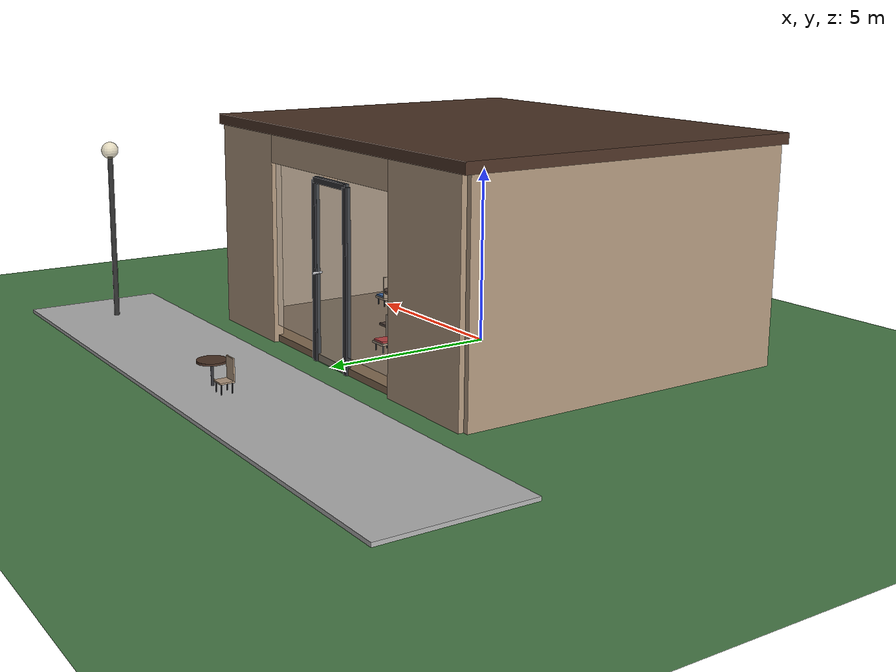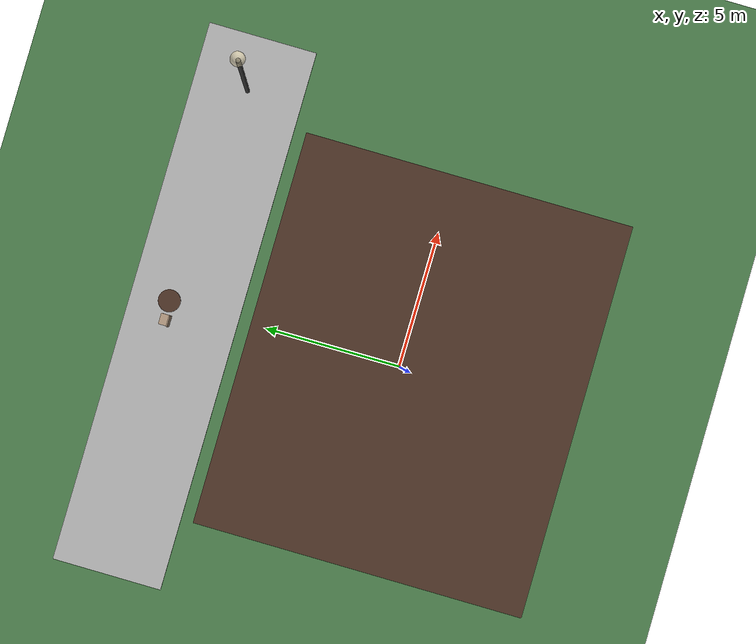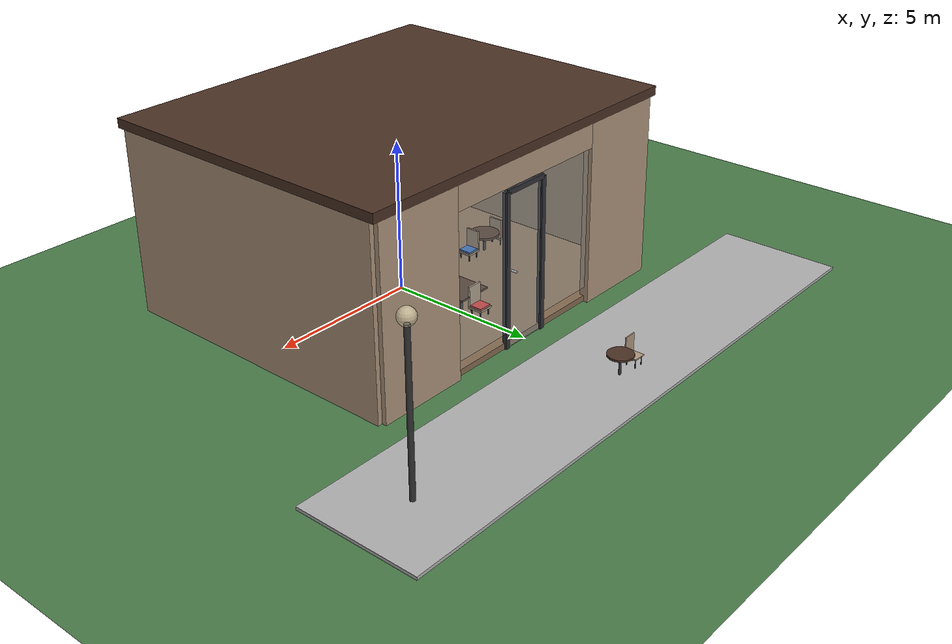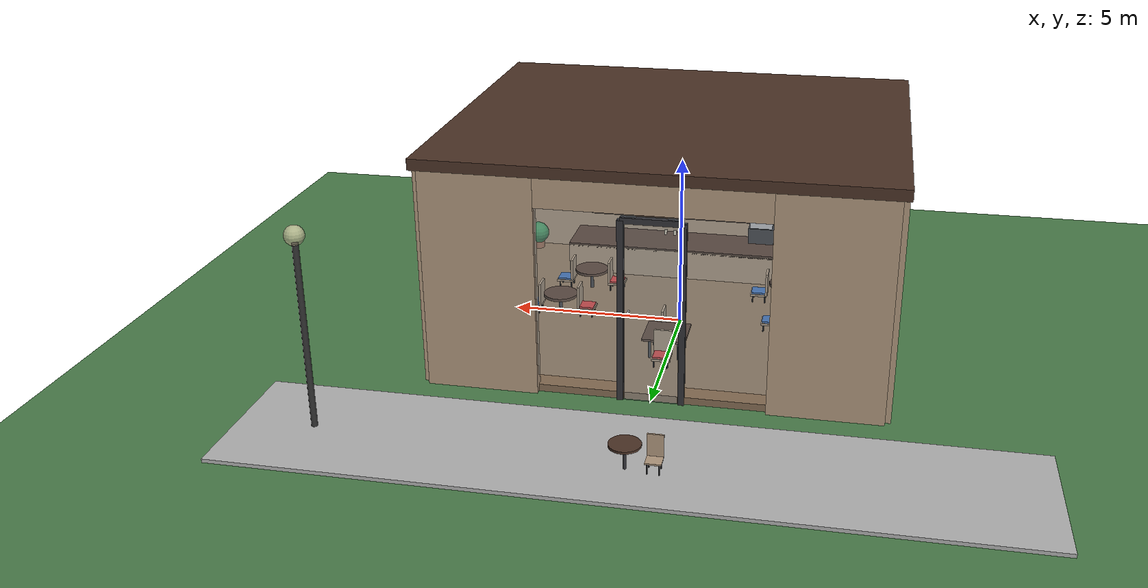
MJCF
<mujoco model="dynamic_glass_cafe">
  <!-- 编译器设置 -->
  <compiler angle="degree" coordinate="local" inertiafromgeom="true"/>

  <!-- 物理选项 -->
  <option timestep="0.005" gravity="0 0 -9.81" iterations="50" solver="Newton" tolerance="1e-10">
    <flag contact="enable" gravity="enable"/>
  </option>

  <!-- 默认设置 -->
  <default>
    <geom conaffinity="1" condim="3" friction="1 0.5 0.005" solimp="0.9 0.95 0.001" solref="0.02 1"/>
    <joint damping="0.5" armature="0.01"/>
    <motor ctrlrange="-1 1" ctrllimited="true"/>
  </default>

  <!-- 视觉设置 -->
  <visual>
    <map force="0.1" zfar="100"/>
    <rgba haze="0.05 0.08 0.12 1"/>
    <quality shadowsize="4096"/>
    <global offwidth="1280" offheight="720"/>
  </visual>

  <!-- 资源定义 -->
  <asset>
    <!-- 木地板 -->
    <texture name="wood_floor" type="2d" builtin="checker" rgb1="0.55 0.45 0.35" rgb2="0.5 0.4 0.3" width="512" height="512"/>
    <material name="wood_floor_mat" texture="wood_floor" texrepeat="10 10" specular="0.3" shininess="0.3" reflectance="0.1"/>

    <!-- 高透明玻璃 -->
    <material name="glass_clear" rgba="0.8 0.9 0.95 0.15" specular="1" shininess="1" reflectance="0.7"/>

    <!-- 半透明玻璃门 -->
    <material name="glass_door" rgba="0.75 0.85 0.9 0.25" specular="1" shininess="1" reflectance="0.6"/>

    <!-- 金属材质 -->
    <material name="metal_dark" rgba="0.2 0.2 0.22 1" specular="0.9" shininess="0.8" reflectance="0.4"/>
    <material name="metal_chrome" rgba="0.8 0.8 0.82 1" specular="1" shininess="0.9" reflectance="0.6"/>

    <!-- 木材 -->
    <material name="wood_dark" rgba="0.3 0.2 0.15 1" specular="0.2" shininess="0.2" reflectance="0"/>
    <material name="wood_light" rgba="0.7 0.6 0.5 1" specular="0.3" shininess="0.3" reflectance="0.05"/>

    <!-- 布料 -->
    <material name="fabric_red" rgba="0.8 0.2 0.2 1" specular="0.1" shininess="0.1"/>
    <material name="fabric_blue" rgba="0.2 0.4 0.7 1" specular="0.1" shininess="0.1"/>
    <material name="fabric_beige" rgba="0.9 0.85 0.75 1" specular="0.1" shininess="0.1"/>

    <!-- 草地 -->
    <texture name="grass" type="2d" builtin="checker" rgb1="0.3 0.5 0.3" rgb2="0.28 0.48 0.28" width="512" height="512"/>
    <material name="grass_mat" texture="grass" texrepeat="40 40" specular="0.1" shininess="0.05" reflectance="0"/>

    <!-- 天空 -->
    <texture name="skybox" type="skybox" builtin="gradient" rgb1="0.6 0.75 0.9" rgb2="0.3 0.5 0.7" width="512" height="512"/>
  </asset>

  <!-- 世界主体 -->
  <worldbody>
    <!-- 主光源（阳光 - 增强） -->
    <light directional="true" diffuse="1.2 1.2 1.1" specular="0.6 0.6 0.5" pos="30 20 40" dir="-1 -0.7 -1.5" castshadow="true"/>

    <!-- 辅助光源 - 增强 -->
    <light directional="true" diffuse="0.5 0.55 0.6" specular="0.3 0.3 0.3" pos="-20 -15 30" dir="0.7 0.5 -1" castshadow="false"/>

    <!-- 室内顶部光源 -->
    <light directional="false" diffuse="1.0 0.95 0.85" specular="0.4 0.4 0.3" pos="0 0 5.5" dir="0 0 -1" castshadow="false" cutoff="80"/>

    <!-- 地面 -->
    <geom name="ground" type="plane" size="50 50 0.1" material="grass_mat" condim="3" friction="1 0.5 0.005"/>

    <!-- ========== 咖啡店主体建筑 ========== -->
    <body name="cafe_building" pos="0 0 0">

      <!-- 地板 -->
      <geom name="cafe_floor" type="box" size="6 5 0.1" pos="0 0 0.1" material="wood_floor_mat"/>

      <!-- 后墙（实墙） -->
      <geom name="back_wall" type="box" size="6 0.15 3" pos="0 -5 3" material="wood_light"/>

      <!-- 左侧墙（实墙） -->
      <geom name="left_wall" type="box" size="0.15 5 3" pos="-6 0 3" material="wood_light"/>

      <!-- 右侧墙（实墙） -->
      <geom name="right_wall" type="box" size="0.15 5 3" pos="6 0 3" material="wood_light"/>

      <!-- 前墙左侧（实墙部分） -->
      <geom name="front_wall_left" type="box" size="1.5 0.15 3" pos="-4.5 5 3" material="wood_light"/>

      <!-- 前墙右侧（实墙部分） -->
      <geom name="front_wall_right" type="box" size="1.5 0.15 3" pos="4.5 5 3" material="wood_light"/>

      <!-- 前墙顶部横梁 -->
      <geom name="front_beam_top" type="box" size="3 0.15 0.4" pos="0 5 5.6" material="wood_light"/>

      <!-- 大型透明玻璃窗 - 前面 -->
      <geom name="front_glass_left" type="box" size="1.3 0.02 2.5" pos="-1.7 5 3" material="glass_clear"/>
      <geom name="front_glass_right" type="box" size="1.3 0.02 2.5" pos="1.7 5 3" material="glass_clear"/>

      <!-- 透明玻璃窗 - 左侧 -->
      <geom name="left_glass_1" type="box" size="0.02 2 2" pos="-6 -2 3" material="glass_clear"/>
      <geom name="left_glass_2" type="box" size="0.02 1.5 2" pos="-6 2 3" material="glass_clear"/>

      <!-- 透明玻璃窗 - 右侧 -->
      <geom name="right_glass_1" type="box" size="0.02 2 2" pos="6 -2 3" material="glass_clear"/>
      <geom name="right_glass_2" type="box" size="0.02 1.5 2" pos="6 2 3" material="glass_clear"/>

      <!-- 屋顶 -->
      <geom name="roof" type="box" size="6.2 5.2 0.15" pos="0 0 6.15" material="wood_dark"/>

      <!-- 门框 -->
      <geom name="door_frame_left" type="box" size="0.08 0.08 2.5" pos="-0.8 5 2.5" material="metal_dark"/>
      <geom name="door_frame_right" type="box" size="0.08 0.08 2.5" pos="0.8 5 2.5" material="metal_dark"/>
      <geom name="door_frame_top" type="box" size="0.8 0.08 0.08" pos="0 5 5" material="metal_dark"/>

    </body>

    <!-- ========== 动态玻璃门（可开合） ========== -->
    <body name="glass_door" pos="0 5 2.5">
      <joint name="door_hinge" type="hinge" pos="-0.7 0 0" axis="0 0 1" range="-5 90" damping="3" stiffness="5"/>
      <geom name="door_glass" type="box" size="0.7 0.03 2.5" pos="0 0 0" material="glass_door"/>
      <geom name="door_handle" type="cylinder" size="0.03 0.15" pos="0.6 0.08 0" quat="0.707 0.707 0 0" material="metal_chrome"/>
    </body>

    <!-- ========== 吧台区域 ========== -->
    <body name="bar_counter" pos="0 -3.5 0">
      <!-- 吧台主体 -->
      <geom name="counter_top" type="box" size="4 0.8 0.05" pos="0 0 1.1" material="wood_dark"/>
      <geom name="counter_front" type="box" size="4 0.8 0.55" pos="0 0 0.55" material="wood_light"/>

      <!-- 吧台后墙架子 -->
      <geom name="back_shelf_1" type="box" size="3.5 0.25 0.03" pos="0 -0.6 1.8" material="wood_dark"/>
      <geom name="back_shelf_2" type="box" size="3.5 0.25 0.03" pos="0 -0.6 2.5" material="wood_dark"/>
      <geom name="back_shelf_3" type="box" size="3.5 0.25 0.03" pos="0 -0.6 3.2" material="wood_dark"/>

      <!-- 咖啡机 -->
      <geom name="coffee_machine_base" type="box" size="0.4 0.3 0.25" pos="-2 -0.5 1.4" material="metal_dark"/>
      <geom name="coffee_machine_top" type="box" size="0.35 0.25 0.15" pos="-2 -0.5 1.75" material="metal_chrome"/>

      <!-- 咖啡杯 -->
      <geom name="cup_1" type="cylinder" size="0.04 0.08" pos="0.5 -0.5 1.23" material="fabric_beige"/>
      <geom name="cup_2" type="cylinder" size="0.04 0.08" pos="0.8 -0.5 1.23" material="fabric_beige"/>
      <geom name="cup_3" type="cylinder" size="0.04 0.08" pos="1.1 -0.5 1.23" material="fabric_beige"/>

      <!-- 架子上的瓶子 - 第1层 -->
      <!-- 瓶子1 - 透明玻璃瓶 -->
      <geom name="bottle_1_base" type="cylinder" size="0.05 0.03" pos="-3 -0.55 1.83" rgba="0.8 0.9 0.95 0.3"/>
      <geom name="bottle_1_body" type="cylinder" size="0.045 0.12" pos="-3 -0.55 1.95" rgba="0.75 0.85 0.9 0.25"/>
      <geom name="bottle_1_neck" type="cylinder" size="0.02 0.06" pos="-3 -0.55 2.13" rgba="0.8 0.9 0.95 0.3"/>
      <geom name="bottle_1_liquid" type="cylinder" size="0.04 0.08" pos="-3 -0.55 1.88" rgba="0.9 0.6 0.2 0.6"/>

      <!-- 瓶子2 - 红酒瓶 -->
      <geom name="bottle_2_base" type="cylinder" size="0.045 0.03" pos="-2.4 -0.55 1.83" rgba="0.2 0.3 0.2 0.5"/>
      <geom name="bottle_2_body" type="cylinder" size="0.04 0.14" pos="-2.4 -0.55 1.97" rgba="0.15 0.25 0.15 0.4"/>
      <geom name="bottle_2_neck" type="cylinder" size="0.018 0.08" pos="-2.4 -0.55 2.19" rgba="0.2 0.3 0.2 0.5"/>
      <geom name="bottle_2_liquid" type="cylinder" size="0.035 0.12" pos="-2.4 -0.55 1.95" rgba="0.6 0.1 0.15 0.7"/>

      <!-- 瓶子3 - 橙汁瓶 -->
      <geom name="bottle_3_base" type="cylinder" size="0.055 0.04" pos="-1.7 -0.55 1.84" rgba="0.85 0.9 0.95 0.25"/>
      <geom name="bottle_3_body" type="cylinder" size="0.05 0.15" pos="-1.7 -0.55 1.99" rgba="0.8 0.85 0.9 0.2"/>
      <geom name="bottle_3_neck" type="cylinder" size="0.025 0.05" pos="-1.7 -0.55 2.19" rgba="0.85 0.9 0.95 0.25"/>
      <geom name="bottle_3_liquid" type="cylinder" size="0.045 0.13" pos="-1.7 -0.55 1.97" rgba="0.9 0.5 0.1 0.7"/>

      <!-- 瓶子4 - 牛奶瓶 -->
      <geom name="bottle_4_base" type="cylinder" size="0.048 0.03" pos="-1.0 -0.55 1.83" rgba="0.9 0.95 1 0.4"/>
      <geom name="bottle_4_body" type="cylinder" size="0.045 0.12" pos="-1.0 -0.55 1.95" rgba="0.85 0.9 0.95 0.35"/>
      <geom name="bottle_4_neck" type="cylinder" size="0.022 0.05" pos="-1.0 -0.55 2.12" rgba="0.9 0.95 1 0.4"/>
      <geom name="bottle_4_liquid" type="cylinder" size="0.04 0.1" pos="-1.0 -0.55 1.9" rgba="0.95 0.95 0.9 0.8"/>

      <!-- 瓶子5 - 啤酒瓶 -->
      <geom name="bottle_5_base" type="cylinder" size="0.042 0.03" pos="-0.3 -0.55 1.83" rgba="0.3 0.2 0.1 0.4"/>
      <geom name="bottle_5_body" type="cylinder" size="0.038 0.16" pos="-0.3 -0.55 1.99" rgba="0.25 0.15 0.05 0.35"/>
      <geom name="bottle_5_neck" type="cylinder" size="0.02 0.07" pos="-0.3 -0.55 2.22" rgba="0.3 0.2 0.1 0.4"/>
      <geom name="bottle_5_liquid" type="cylinder" size="0.033 0.14" pos="-0.3 -0.55 1.97" rgba="0.8 0.6 0.2 0.6"/>

      <!-- 瓶子6 - 绿茶瓶 -->
      <geom name="bottle_6_base" type="cylinder" size="0.05 0.03" pos="0.4 -0.55 1.83" rgba="0.8 0.9 0.85 0.25"/>
      <geom name="bottle_6_body" type="cylinder" size="0.045 0.13" pos="0.4 -0.55 1.96" rgba="0.75 0.85 0.8 0.2"/>
      <geom name="bottle_6_neck" type="cylinder" size="0.022 0.06" pos="0.4 -0.55 2.15" rgba="0.8 0.9 0.85 0.25"/>
      <geom name="bottle_6_liquid" type="cylinder" size="0.04 0.11" pos="0.4 -0.55 1.94" rgba="0.4 0.6 0.3 0.6"/>

      <!-- 架子上的瓶子 - 第2层 -->
      <!-- 瓶子7 - 咖啡瓶 -->
      <geom name="bottle_7_base" type="cylinder" size="0.048 0.03" pos="-3.2 -0.55 2.53" rgba="0.3 0.25 0.2 0.4"/>
      <geom name="bottle_7_body" type="cylinder" size="0.042 0.14" pos="-3.2 -0.55 2.67" rgba="0.25 0.2 0.15 0.35"/>
      <geom name="bottle_7_neck" type="cylinder" size="0.02 0.06" pos="-3.2 -0.55 2.87" rgba="0.3 0.25 0.2 0.4"/>
      <geom name="bottle_7_liquid" type="cylinder" size="0.037 0.12" pos="-3.2 -0.55 2.65" rgba="0.2 0.15 0.1 0.8"/>

      <!-- 瓶子8 - 果汁瓶 -->
      <geom name="bottle_8_base" type="cylinder" size="0.05 0.03" pos="-2.5 -0.55 2.53" rgba="0.85 0.9 0.95 0.25"/>
      <geom name="bottle_8_body" type="cylinder" size="0.045 0.13" pos="-2.5 -0.55 2.66" rgba="0.8 0.85 0.9 0.2"/>
      <geom name="bottle_8_neck" type="cylinder" size="0.022 0.05" pos="-2.5 -0.55 2.84" rgba="0.85 0.9 0.95 0.25"/>
      <geom name="bottle_8_liquid" type="cylinder" size="0.04 0.11" pos="-2.5 -0.55 2.64" rgba="0.9 0.3 0.4 0.7"/>

      <!-- 瓶子9 - 汽水瓶 -->
      <geom name="bottle_9_base" type="cylinder" size="0.052 0.04" pos="-1.8 -0.55 2.54" rgba="0.8 0.9 0.95 0.25"/>
      <geom name="bottle_9_body" type="cylinder" size="0.048 0.15" pos="-1.8 -0.55 2.69" rgba="0.75 0.85 0.9 0.2"/>
      <geom name="bottle_9_neck" type="cylinder" size="0.024 0.05" pos="-1.8 -0.55 2.89" rgba="0.8 0.9 0.95 0.25"/>
      <geom name="bottle_9_liquid" type="cylinder" size="0.043 0.13" pos="-1.8 -0.55 2.67" rgba="0.3 0.8 0.4 0.6"/>

      <!-- 瓶子10 - 伏特加瓶 -->
      <geom name="bottle_10_base" type="cylinder" size="0.04 0.03" pos="-1.1 -0.55 2.53" rgba="0.9 0.95 1 0.2"/>
      <geom name="bottle_10_body" type="cylinder" size="0.035 0.16" pos="-1.1 -0.55 2.69" rgba="0.85 0.9 0.95 0.15"/>
      <geom name="bottle_10_neck" type="cylinder" size="0.018 0.08" pos="-1.1 -0.55 2.93" rgba="0.9 0.95 1 0.2"/>
      <geom name="bottle_10_liquid" type="cylinder" size="0.03 0.14" pos="-1.1 -0.55 2.67" rgba="0.95 0.95 0.98 0.5"/>

      <!-- 瓶子11 - 葡萄酒瓶 -->
      <geom name="bottle_11_base" type="cylinder" size="0.045 0.03" pos="-0.3 -0.55 2.53" rgba="0.2 0.3 0.2 0.5"/>
      <geom name="bottle_11_body" type="cylinder" size="0.04 0.15" pos="-0.3 -0.55 2.68" rgba="0.15 0.25 0.15 0.4"/>
      <geom name="bottle_11_neck" type="cylinder" size="0.019 0.07" pos="-0.3 -0.55 2.89" rgba="0.2 0.3 0.2 0.5"/>
      <geom name="bottle_11_liquid" type="cylinder" size="0.035 0.13" pos="-0.3 -0.55 2.66" rgba="0.5 0.2 0.3 0.75"/>

      <!-- 瓶子12 - 柠檬水瓶 -->
      <geom name="bottle_12_base" type="cylinder" size="0.05 0.03" pos="0.5 -0.55 2.53" rgba="0.85 0.9 0.95 0.25"/>
      <geom name="bottle_12_body" type="cylinder" size="0.045 0.14" pos="0.5 -0.55 2.67" rgba="0.8 0.85 0.9 0.2"/>
      <geom name="bottle_12_neck" type="cylinder" size="0.023 0.06" pos="0.5 -0.55 2.87" rgba="0.85 0.9 0.95 0.25"/>
      <geom name="bottle_12_liquid" type="cylinder" size="0.04 0.12" pos="0.5 -0.55 2.65" rgba="0.95 0.9 0.3 0.65"/>

      <!-- 架子上的瓶子 - 第3层 -->
      <!-- 瓶子13 - 香槟瓶 -->
      <geom name="bottle_13_base" type="cylinder" size="0.05 0.04" pos="-3.3 -0.55 3.24" rgba="0.2 0.3 0.2 0.5"/>
      <geom name="bottle_13_body" type="cylinder" size="0.045 0.13" pos="-3.3 -0.55 3.37" rgba="0.15 0.25 0.15 0.4"/>
      <geom name="bottle_13_neck" type="cylinder" size="0.022 0.08" pos="-3.3 -0.55 3.58" rgba="0.2 0.3 0.2 0.5"/>
      <geom name="bottle_13_liquid" type="cylinder" size="0.04 0.11" pos="-3.3 -0.55 3.35" rgba="0.9 0.85 0.5 0.6"/>

      <!-- 瓶子14 - 苏打水瓶 -->
      <geom name="bottle_14_base" type="cylinder" size="0.048 0.03" pos="-2.7 -0.55 3.24" rgba="0.85 0.9 0.95 0.25"/>
      <geom name="bottle_14_body" type="cylinder" size="0.043 0.12" pos="-2.7 -0.55 3.36" rgba="0.8 0.85 0.9 0.2"/>
      <geom name="bottle_14_neck" type="cylinder" size="0.021 0.06" pos="-2.7 -0.55 3.54" rgba="0.85 0.9 0.95 0.25"/>
      <geom name="bottle_14_liquid" type="cylinder" size="0.038 0.1" pos="-2.7 -0.55 3.34" rgba="0.85 0.92 0.98 0.5"/>

      <!-- 瓶子15 - 威士忌瓶 -->
      <geom name="bottle_15_base" type="cylinder" size="0.052 0.04" pos="-2.0 -0.55 3.24" rgba="0.4 0.3 0.2 0.4"/>
      <geom name="bottle_15_body" type="cylinder" size="0.047 0.14" pos="-2.0 -0.55 3.38" rgba="0.35 0.25 0.15 0.35"/>
      <geom name="bottle_15_neck" type="cylinder" size="0.023 0.05" pos="-2.0 -0.55 3.57" rgba="0.4 0.3 0.2 0.4"/>
      <geom name="bottle_15_liquid" type="cylinder" size="0.042 0.12" pos="-2.0 -0.55 3.36" rgba="0.7 0.5 0.2 0.7"/>

      <!-- 瓶子16 - 矿泉水瓶 -->
      <geom name="bottle_16_base" type="cylinder" size="0.045 0.03" pos="-1.3 -0.55 3.24" rgba="0.9 0.95 1 0.2"/>
      <geom name="bottle_16_body" type="cylinder" size="0.04 0.15" pos="-1.3 -0.55 3.39" rgba="0.85 0.9 0.95 0.15"/>
      <geom name="bottle_16_neck" type="cylinder" size="0.02 0.06" pos="-1.3 -0.55 3.6" rgba="0.9 0.95 1 0.2"/>
      <geom name="bottle_16_liquid" type="cylinder" size="0.035 0.13" pos="-1.3 -0.55 3.37" rgba="0.9 0.95 1 0.3"/>

      <!-- 瓶子17 - 能量饮料瓶 -->
      <geom name="bottle_17_base" type="cylinder" size="0.04 0.03" pos="-0.6 -0.55 3.24" rgba="0.85 0.9 0.95 0.25"/>
      <geom name="bottle_17_body" type="cylinder" size="0.035 0.16" pos="-0.6 -0.55 3.4" rgba="0.8 0.85 0.9 0.2"/>
      <geom name="bottle_17_neck" type="cylinder" size="0.018 0.05" pos="-0.6 -0.55 3.61" rgba="0.85 0.9 0.95 0.25"/>
      <geom name="bottle_17_liquid" type="cylinder" size="0.03 0.14" pos="-0.6 -0.55 3.38" rgba="0.2 0.4 0.9 0.7"/>

      <!-- 瓶子18 - 奶茶瓶 -->
      <geom name="bottle_18_base" type="cylinder" size="0.05 0.03" pos="0.2 -0.55 3.24" rgba="0.85 0.9 0.95 0.25"/>
      <geom name="bottle_18_body" type="cylinder" size="0.045 0.13" pos="0.2 -0.55 3.37" rgba="0.8 0.85 0.9 0.2"/>
      <geom name="bottle_18_neck" type="cylinder" size="0.022 0.06" pos="0.2 -0.55 3.56" rgba="0.85 0.9 0.95 0.25"/>
      <geom name="bottle_18_liquid" type="cylinder" size="0.04 0.11" pos="0.2 -0.55 3.35" rgba="0.8 0.7 0.6 0.75"/>

      <!-- 瓶子19 - 蓝莓汁瓶 -->
      <geom name="bottle_19_base" type="cylinder" size="0.047 0.03" pos="0.9 -0.55 3.24" rgba="0.85 0.9 0.95 0.25"/>
      <geom name="bottle_19_body" type="cylinder" size="0.042 0.14" pos="0.9 -0.55 3.38" rgba="0.8 0.85 0.9 0.2"/>
      <geom name="bottle_19_neck" type="cylinder" size="0.021 0.06" pos="0.9 -0.55 3.58" rgba="0.85 0.9 0.95 0.25"/>
      <geom name="bottle_19_liquid" type="cylinder" size="0.037 0.12" pos="0.9 -0.55 3.36" rgba="0.3 0.2 0.6 0.7"/>

      <!-- 瓶子20 - 冰茶瓶 -->
      <geom name="bottle_20_base" type="cylinder" size="0.05 0.03" pos="1.6 -0.55 3.24" rgba="0.85 0.9 0.95 0.25"/>
      <geom name="bottle_20_body" type="cylinder" size="0.045 0.13" pos="1.6 -0.55 3.37" rgba="0.8 0.85 0.9 0.2"/>
      <geom name="bottle_20_neck" type="cylinder" size="0.022 0.05" pos="1.6 -0.55 3.55" rgba="0.85 0.9 0.95 0.25"/>
      <geom name="bottle_20_liquid" type="cylinder" size="0.04 0.11" pos="1.6 -0.55 3.35" rgba="0.6 0.4 0.2 0.6"/>

      <!-- 吧台内部灯光 -->
      <light mode="fixed" directional="false" diffuse="1 0.9 0.7" specular="0.5 0.4 0.3" pos="0 -0.3 3" dir="0 0 -1" castshadow="false" cutoff="45"/>
    </body>

    <!-- ========== 天花板旋转风扇（动态） ========== -->
    <body name="ceiling_fan" pos="0 0 5.8">
      <!-- 底座 -->
      <geom name="fan_mount" type="cylinder" size="0.15 0.2" pos="0 0 0" material="metal_dark"/>

      <!-- 旋转部分 -->
      <body name="fan_rotor" pos="0 0 -0.3">
        <joint name="fan_rotation" type="hinge" axis="0 0 1" damping="0.1"/>
        <geom name="fan_center" type="cylinder" size="0.12 0.05" pos="0 0 0" material="metal_chrome"/>

        <!-- 扇叶1 -->
        <geom name="fan_blade_1" type="box" size="0.6 0.12 0.02" pos="0 0 0" material="wood_light"/>
        <!-- 扇叶2 -->
        <geom name="fan_blade_2" type="box" size="0.6 0.12 0.02" pos="0 0 0" quat="0.866 0 0 0.5" material="wood_light"/>
        <!-- 扇叶3 -->
        <geom name="fan_blade_3" type="box" size="0.6 0.12 0.02" pos="0 0 0" quat="0.5 0 0 0.866" material="wood_light"/>
      </body>
    </body>

    <!-- ========== 摆钟（动态） ========== -->
    <body name="wall_clock" pos="0 -4.85 4.5">
      <!-- 钟面 -->
      <geom name="clock_face" type="cylinder" size="0.25 0.05" pos="0 0 0" quat="0.707 0.707 0 0" material="wood_light"/>
      <geom name="clock_center" type="cylinder" size="0.22 0.03" pos="0 -0.06 0" quat="0.707 0.707 0 0" rgba="1 1 1 1"/>

      <!-- 钟摆 -->
      <body name="pendulum" pos="0 -0.1 -0.3">
        <joint name="pendulum_swing" type="hinge" axis="1 0 0" range="-25 25" damping="0.05" stiffness="0.5"/>
        <geom name="pendulum_rod" type="cylinder" size="0.01 0.4" pos="0 0 -0.4" material="metal_dark"/>
        <geom name="pendulum_weight" type="sphere" size="0.08" pos="0 0 -0.8" material="metal_chrome"/>
      </body>
    </body>

    <!-- ========== 吊灯（摆动） ========== -->
    <body name="pendant_lamp_1" pos="-2.5 1 5.5">
      <joint name="lamp1_swing" type="ball" damping="0.3"/>
      <!-- 吊线 -->
      <geom name="lamp1_cord" type="cylinder" size="0.01 0.8" pos="0 0 -0.8" material="metal_dark"/>
      <!-- 灯罩 -->
      <geom name="lamp1_shade" type="sphere" size="0.2" pos="0 0 -1.6" rgba="0.9 0.85 0.7 0.8"/>
      <!-- 灯光 -->
      <light mode="fixed" directional="false" diffuse="1 0.85 0.6" specular="0.4 0.3 0.2" pos="0 0 -1.6" dir="0 0 -1" castshadow="false" cutoff="50"/>
    </body>

    <body name="pendant_lamp_2" pos="2.5 1 5.5">
      <joint name="lamp2_swing" type="ball" damping="0.3"/>
      <geom name="lamp2_cord" type="cylinder" size="0.01 0.8" pos="0 0 -0.8" material="metal_dark"/>
      <geom name="lamp2_shade" type="sphere" size="0.2" pos="0 0 -1.6" rgba="0.9 0.85 0.7 0.8"/>
      <light mode="fixed" directional="false" diffuse="1 0.85 0.6" specular="0.4 0.3 0.2" pos="0 0 -1.6" dir="0 0 -1" castshadow="false" cutoff="50"/>
    </body>

    <!-- ========== 桌椅组合 ========== -->

    <!-- 桌子1（左侧） - 圆桌 -->
    <body name="table_1" pos="-3.5 0.5 0">
      <geom name="table1_top" type="cylinder" size="0.5 0.04" pos="0 0 0.8" material="wood_dark"/>
      <geom name="table1_leg" type="cylinder" size="0.05 0.4" pos="0 0 0.4" material="metal_dark"/>
    </body>

    <!-- 桌子1的椅子 -->
    <!-- 椅子1-1（左侧，朝向桌子中心） -->
    <body name="chair_1_1" pos="-4.3 0.5 0.45" quat="0.707 0 0 0.707">
      <geom name="chair1_1_seat" type="box" size="0.25 0.25 0.03" pos="0 0 0" material="wood_light"/>
      <geom name="chair1_1_back" type="box" size="0.25 0.03 0.35" pos="0 -0.22 0.35" material="wood_light"/>
      <geom name="chair1_1_leg1" type="cylinder" size="0.02 0.225" pos="-0.18 -0.18 -0.225" material="metal_dark"/>
      <geom name="chair1_1_leg2" type="cylinder" size="0.02 0.225" pos="0.18 -0.18 -0.225" material="metal_dark"/>
      <geom name="chair1_1_leg3" type="cylinder" size="0.02 0.225" pos="-0.18 0.18 -0.225" material="metal_dark"/>
      <geom name="chair1_1_leg4" type="cylinder" size="0.02 0.225" pos="0.18 0.18 -0.225" material="metal_dark"/>
      <geom name="chair1_1_cushion" type="box" size="0.22 0.22 0.04" pos="0 0 0.04" material="fabric_red"/>
    </body>

    <!-- 椅子1-2（右侧，朝向桌子中心） -->
    <body name="chair_1_2" pos="-2.7 0.5 0.45" quat="0.707 0 0 -0.707">
      <geom name="chair1_2_seat" type="box" size="0.25 0.25 0.03" pos="0 0 0" material="wood_light"/>
      <geom name="chair1_2_back" type="box" size="0.25 0.03 0.35" pos="0 -0.22 0.35" material="wood_light"/>
      <geom name="chair1_2_leg1" type="cylinder" size="0.02 0.225" pos="-0.18 -0.18 -0.225" material="metal_dark"/>
      <geom name="chair1_2_leg2" type="cylinder" size="0.02 0.225" pos="0.18 -0.18 -0.225" material="metal_dark"/>
      <geom name="chair1_2_leg3" type="cylinder" size="0.02 0.225" pos="-0.18 0.18 -0.225" material="metal_dark"/>
      <geom name="chair1_2_leg4" type="cylinder" size="0.02 0.225" pos="0.18 0.18 -0.225" material="metal_dark"/>
      <geom name="chair1_2_cushion" type="box" size="0.22 0.22 0.04" pos="0 0 0.04" material="fabric_blue"/>
    </body>

    <!-- 桌子2（右侧） - 圆桌 -->
    <body name="table_2" pos="3.5 0.5 0">
      <geom name="table2_top" type="cylinder" size="0.5 0.04" pos="0 0 0.8" material="wood_dark"/>
      <geom name="table2_leg" type="cylinder" size="0.05 0.4" pos="0 0 0.4" material="metal_dark"/>
    </body>

    <!-- 桌子2的椅子 -->
    <!-- 椅子2-1（左侧） -->
    <body name="chair_2_1" pos="2.7 0.5 0.45" quat="0.707 0 0 0.707">
      <geom name="chair2_1_seat" type="box" size="0.25 0.25 0.03" pos="0 0 0" material="wood_light"/>
      <geom name="chair2_1_back" type="box" size="0.25 0.03 0.35" pos="0 -0.22 0.35" material="wood_light"/>
      <geom name="chair2_1_leg1" type="cylinder" size="0.02 0.225" pos="-0.18 -0.18 -0.225" material="metal_dark"/>
      <geom name="chair2_1_leg2" type="cylinder" size="0.02 0.225" pos="0.18 -0.18 -0.225" material="metal_dark"/>
      <geom name="chair2_1_leg3" type="cylinder" size="0.02 0.225" pos="-0.18 0.18 -0.225" material="metal_dark"/>
      <geom name="chair2_1_leg4" type="cylinder" size="0.02 0.225" pos="0.18 0.18 -0.225" material="metal_dark"/>
      <geom name="chair2_1_cushion" type="box" size="0.22 0.22 0.04" pos="0 0 0.04" material="fabric_red"/>
    </body>

    <!-- 椅子2-2（右侧） -->
    <body name="chair_2_2" pos="4.3 0.5 0.45" quat="0.707 0 0 -0.707">
      <geom name="chair2_2_seat" type="box" size="0.25 0.25 0.03" pos="0 0 0" material="wood_light"/>
      <geom name="chair2_2_back" type="box" size="0.25 0.03 0.35" pos="0 -0.22 0.35" material="wood_light"/>
      <geom name="chair2_2_leg1" type="cylinder" size="0.02 0.225" pos="-0.18 -0.18 -0.225" material="metal_dark"/>
      <geom name="chair2_2_leg2" type="cylinder" size="0.02 0.225" pos="0.18 -0.18 -0.225" material="metal_dark"/>
      <geom name="chair2_2_leg3" type="cylinder" size="0.02 0.225" pos="-0.18 0.18 -0.225" material="metal_dark"/>
      <geom name="chair2_2_leg4" type="cylinder" size="0.02 0.225" pos="0.18 0.18 -0.225" material="metal_dark"/>
      <geom name="chair2_2_cushion" type="box" size="0.22 0.22 0.04" pos="0 0 0.04" material="fabric_blue"/>
    </body>

    <!-- 桌子3（中间） - 方桌 -->
    <body name="table_3" pos="0 2.5 0">
      <geom name="table3_top" type="box" size="0.6 0.6 0.03" pos="0 0 0.8" material="wood_dark"/>
      <geom name="table3_leg1" type="cylinder" size="0.04 0.4" pos="-0.4 -0.4 0.4" material="metal_dark"/>
      <geom name="table3_leg2" type="cylinder" size="0.04 0.4" pos="0.4 -0.4 0.4" material="metal_dark"/>
      <geom name="table3_leg3" type="cylinder" size="0.04 0.4" pos="-0.4 0.4 0.4" material="metal_dark"/>
      <geom name="table3_leg4" type="cylinder" size="0.04 0.4" pos="0.4 0.4 0.4" material="metal_dark"/>
    </body>

    <!-- 桌子3的椅子 - 四面都有 -->
    <!-- 椅子3-1（前侧） -->
    <body name="chair_3_1" pos="0 3.3 0.45">
      <geom name="chair3_1_seat" type="box" size="0.25 0.25 0.03" pos="0 0 0" material="wood_light"/>
      <geom name="chair3_1_back" type="box" size="0.25 0.03 0.35" pos="0 -0.22 0.35" material="wood_light"/>
      <geom name="chair3_1_leg1" type="cylinder" size="0.02 0.225" pos="-0.18 -0.18 -0.225" material="metal_dark"/>
      <geom name="chair3_1_leg2" type="cylinder" size="0.02 0.225" pos="0.18 -0.18 -0.225" material="metal_dark"/>
      <geom name="chair3_1_leg3" type="cylinder" size="0.02 0.225" pos="-0.18 0.18 -0.225" material="metal_dark"/>
      <geom name="chair3_1_leg4" type="cylinder" size="0.02 0.225" pos="0.18 0.18 -0.225" material="metal_dark"/>
      <geom name="chair3_1_cushion" type="box" size="0.22 0.22 0.04" pos="0 0 0.04" material="fabric_red"/>
    </body>

    <!-- 椅子3-2（后侧） -->
    <body name="chair_3_2" pos="0 1.7 0.45" quat="1 0 0 1">
      <geom name="chair3_2_seat" type="box" size="0.25 0.25 0.03" pos="0 0 0" material="wood_light"/>
      <geom name="chair3_2_back" type="box" size="0.25 0.03 0.35" pos="0 -0.22 0.35" material="wood_light"/>
      <geom name="chair3_2_leg1" type="cylinder" size="0.02 0.225" pos="-0.18 -0.18 -0.225" material="metal_dark"/>
      <geom name="chair3_2_leg2" type="cylinder" size="0.02 0.225" pos="0.18 -0.18 -0.225" material="metal_dark"/>
      <geom name="chair3_2_leg3" type="cylinder" size="0.02 0.225" pos="-0.18 0.18 -0.225" material="metal_dark"/>
      <geom name="chair3_2_leg4" type="cylinder" size="0.02 0.225" pos="0.18 0.18 -0.225" material="metal_dark"/>
      <geom name="chair3_2_cushion" type="box" size="0.22 0.22 0.04" pos="0 0 0.04" material="fabric_blue"/>
    </body>

    <!-- 桌子4（左后） - 圆桌 -->
    <body name="table_4" pos="-3 -1.5 0">
      <geom name="table4_top" type="cylinder" size="0.5 0.04" pos="0 0 0.8" material="wood_dark"/>
      <geom name="table4_leg" type="cylinder" size="0.05 0.4" pos="0 0 0.4" material="metal_dark"/>
    </body>

    <!-- 桌子4的椅子 -->
    <body name="chair_4_1" pos="-3.8 -1.5 0.45" quat="0.707 0 0 0.707">
      <geom name="chair4_1_seat" type="box" size="0.25 0.25 0.03" pos="0 0 0" material="wood_light"/>
      <geom name="chair4_1_back" type="box" size="0.25 0.03 0.35" pos="0 -0.22 0.35" material="wood_light"/>
      <geom name="chair4_1_leg1" type="cylinder" size="0.02 0.225" pos="-0.18 -0.18 -0.225" material="metal_dark"/>
      <geom name="chair4_1_leg2" type="cylinder" size="0.02 0.225" pos="0.18 -0.18 -0.225" material="metal_dark"/>
      <geom name="chair4_1_leg3" type="cylinder" size="0.02 0.225" pos="-0.18 0.18 -0.225" material="metal_dark"/>
      <geom name="chair4_1_leg4" type="cylinder" size="0.02 0.225" pos="0.18 0.18 -0.225" material="metal_dark"/>
      <geom name="chair4_1_cushion" type="box" size="0.22 0.22 0.04" pos="0 0 0.04" material="fabric_red"/>
    </body>

    <body name="chair_4_2" pos="-2.2 -1.5 0.45" quat="0.707 0 0 -0.707">
      <geom name="chair4_2_seat" type="box" size="0.25 0.25 0.03" pos="0 0 0" material="wood_light"/>
      <geom name="chair4_2_back" type="box" size="0.25 0.03 0.35" pos="0 -0.22 0.35" material="wood_light"/>
      <geom name="chair4_2_leg1" type="cylinder" size="0.02 0.225" pos="-0.18 -0.18 -0.225" material="metal_dark"/>
      <geom name="chair4_2_leg2" type="cylinder" size="0.02 0.225" pos="0.18 -0.18 -0.225" material="metal_dark"/>
      <geom name="chair4_2_leg3" type="cylinder" size="0.02 0.225" pos="-0.18 0.18 -0.225" material="metal_dark"/>
      <geom name="chair4_2_leg4" type="cylinder" size="0.02 0.225" pos="0.18 0.18 -0.225" material="metal_dark"/>
      <geom name="chair4_2_cushion" type="box" size="0.22 0.22 0.04" pos="0 0 0.04" material="fabric_blue"/>
    </body>

    <!-- 桌子5（右后） - 圆桌 -->
    <body name="table_5" pos="3 -1.5 0">
      <geom name="table5_top" type="cylinder" size="0.5 0.04" pos="0 0 0.8" material="wood_dark"/>
      <geom name="table5_leg" type="cylinder" size="0.05 0.4" pos="0 0 0.4" material="metal_dark"/>
    </body>

    <!-- 桌子5的椅子 -->
    <body name="chair_5_1" pos="2.2 -1.5 0.45" quat="0.707 0 0 0.707">
      <geom name="chair5_1_seat" type="box" size="0.25 0.25 0.03" pos="0 0 0" material="wood_light"/>
      <geom name="chair5_1_back" type="box" size="0.25 0.03 0.35" pos="0 -0.22 0.35" material="wood_light"/>
      <geom name="chair5_1_leg1" type="cylinder" size="0.02 0.225" pos="-0.18 -0.18 -0.225" material="metal_dark"/>
      <geom name="chair5_1_leg2" type="cylinder" size="0.02 0.225" pos="0.18 -0.18 -0.225" material="metal_dark"/>
      <geom name="chair5_1_leg3" type="cylinder" size="0.02 0.225" pos="-0.18 0.18 -0.225" material="metal_dark"/>
      <geom name="chair5_1_leg4" type="cylinder" size="0.02 0.225" pos="0.18 0.18 -0.225" material="metal_dark"/>
      <geom name="chair5_1_cushion" type="box" size="0.22 0.22 0.04" pos="0 0 0.04" material="fabric_red"/>
    </body>

    <body name="chair_5_2" pos="3.8 -1.5 0.45" quat="0.707 0 0 -0.707">
      <geom name="chair5_2_seat" type="box" size="0.25 0.25 0.03" pos="0 0 0" material="wood_light"/>
      <geom name="chair5_2_back" type="box" size="0.25 0.03 0.35" pos="0 -0.22 0.35" material="wood_light"/>
      <geom name="chair5_2_leg1" type="cylinder" size="0.02 0.225" pos="-0.18 -0.18 -0.225" material="metal_dark"/>
      <geom name="chair5_2_leg2" type="cylinder" size="0.02 0.225" pos="0.18 -0.18 -0.225" material="metal_dark"/>
      <geom name="chair5_2_leg3" type="cylinder" size="0.02 0.225" pos="-0.18 0.18 -0.225" material="metal_dark"/>
      <geom name="chair5_2_leg4" type="cylinder" size="0.02 0.225" pos="0.18 0.18 -0.225" material="metal_dark"/>
      <geom name="chair5_2_cushion" type="box" size="0.22 0.22 0.04" pos="0 0 0.04" material="fabric_blue"/>
    </body>

    <!-- ========== 装饰植物 ========== -->
    <body name="plant_1" pos="-5.5 -4.5 0">
      <geom name="pot_1" type="cylinder" size="0.2 0.25" pos="0 0 0.25" rgba="0.6 0.4 0.3 1"/>
      <geom name="plant_1_leaves" type="sphere" size="0.35" pos="0 0 0.7" rgba="0.2 0.5 0.3 1"/>
    </body>

    <body name="plant_2" pos="5.5 -4.5 0">
      <geom name="pot_2" type="cylinder" size="0.2 0.25" pos="0 0 0.25" rgba="0.6 0.4 0.3 1"/>
      <geom name="plant_2_leaves" type="sphere" size="0.35" pos="0 0 0.7" rgba="0.2 0.5 0.3 1"/>
    </body>

    <!-- ========== 外部装饰 ========== -->

    <!-- 人行道 -->
    <geom name="sidewalk" type="box" size="10 2 0.05" pos="0 8 0.05" rgba="0.7 0.7 0.7 1"/>

    <!-- 户外座位 -->
    <body name="outdoor_table" pos="0 8.5 0">
      <geom name="outdoor_table_top" type="cylinder" size="0.4 0.03" pos="0 0 0.75" material="wood_dark"/>
      <geom name="outdoor_table_leg" type="cylinder" size="0.04 0.375" pos="0 0 0.375" material="metal_dark"/>
    </body>

    <!-- 户外椅子 -->
    <body name="outdoor_chair" pos="-0.7 8.5 0.4">
      <geom name="outdoor_chair_seat" type="box" size="0.2 0.2 0.02" pos="0 0 0" material="wood_light"/>
      <geom name="outdoor_chair_back" type="box" size="0.2 0.02 0.3" pos="0 -0.18 0.3" material="wood_light"/>
      <geom name="outdoor_chair_leg1" type="cylinder" size="0.015 0.2" pos="-0.15 -0.15 -0.2" material="metal_dark"/>
      <geom name="outdoor_chair_leg2" type="cylinder" size="0.015 0.2" pos="0.15 -0.15 -0.2" material="metal_dark"/>
      <geom name="outdoor_chair_leg3" type="cylinder" size="0.015 0.2" pos="-0.15 0.15 -0.2" material="metal_dark"/>
      <geom name="outdoor_chair_leg4" type="cylinder" size="0.015 0.2" pos="0.15 0.15 -0.2" material="metal_dark"/>
    </body>

    <!-- 路灯 -->
    <body name="street_lamp" pos="8 8 0">
      <geom name="lamp_post" type="cylinder" size="0.08 2.5" pos="0 0 2.5" rgba="0.2 0.2 0.2 1"/>
      <geom name="lamp_head" type="sphere" size="0.25" pos="0 0 5.2" rgba="0.9 0.85 0.7 0.7"/>
      <light mode="fixed" directional="false" diffuse="0.8 0.75 0.6" specular="0.3 0.25 0.2" pos="0 0 5.2" dir="0 0 -1" castshadow="false" cutoff="60"/>
    </body>

    <!-- ========== 相机视角 ========== -->
    <camera name="exterior_view" pos="12 12 6" xyaxes="-0.7 0.7 0 -0.35 -0.35 0.87" mode="fixed"/>
    <camera name="front_door_view" pos="0 10 3" xyaxes="1 0 0 0 0.3 0.95" mode="fixed"/>
    <camera name="inside_view" pos="0 0 2.5" xyaxes="1 0 0 0 0.7 0.7" mode="fixed"/>
    <camera name="bar_view" pos="0 -6 2" xyaxes="1 0 0 0 0.5 0.87" mode="fixed"/>
    <camera name="top_view" pos="0 0 20" xyaxes="1 0 0 0 1 0" mode="fixed"/>
    <camera name="side_view" pos="-12 0 4" xyaxes="0 1 0 -0.3 0 0.95" mode="fixed"/>

  </worldbody>

  <!-- ========== 执行器（控制动态元素） ========== -->
  <actuator>
    <!-- 风扇电机（持续旋转） -->
    <velocity name="fan_motor" joint="fan_rotation" kv="10" gear="1"/>

    <!-- 门控制 -->
    <position name="door_control" joint="door_hinge" kp="50" gear="1"/>

    <!-- 钟摆初始推动 -->
    <motor name="pendulum_motor" joint="pendulum_swing" gear="0.5" ctrlrange="-0.5 0.5"/>
  </actuator>

  <!-- ========== 传感器 ========== -->
  <sensor>
    <!-- 风扇转速传感器 -->
    <jointvel name="fan_speed" joint="fan_rotation"/>

    <!-- 门位置传感器 -->
    <jointpos name="door_position" joint="door_hinge"/>

    <!-- 钟摆角度传感器 -->
    <jointpos name="pendulum_angle" joint="pendulum_swing"/>
  </sensor>

  <!-- ========== 关键帧（预设场景状态） ========== -->
  <keyframe>
    <!-- 初始状态 -->
    <key name="initial" ctrl="5 0 0"/>

    <!-- 风扇快速旋转 -->
    <key name="fan_fast" ctrl="15 0 0"/>

    <!-- 门打开 -->
    <key name="door_open" ctrl="5 80 0"/>

    <!-- 钟摆摆动 -->
    <key name="pendulum_active" ctrl="5 0 0.3"/>
  </keyframe>

</mujoco>
